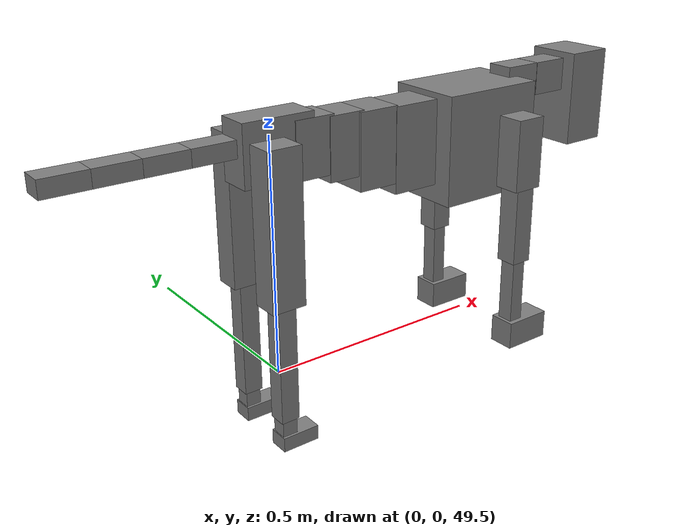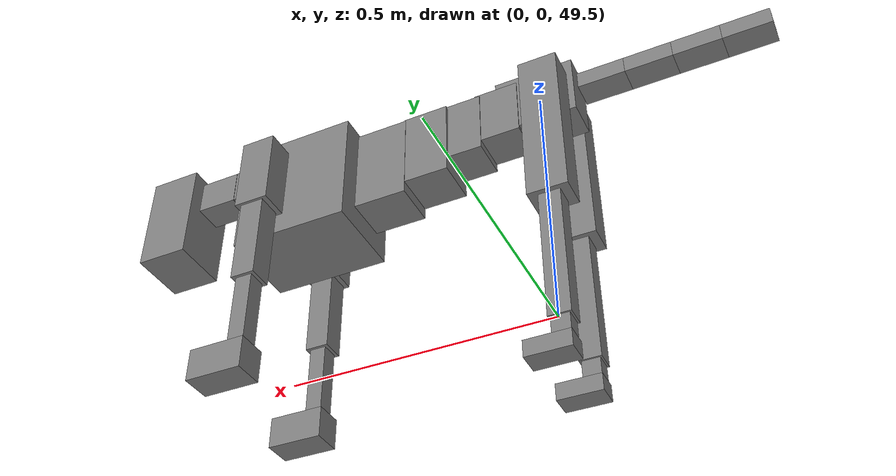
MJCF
<mujoco model="dog">

    <default>
        <joint armature="0.02" stiffness="1" damping="0.2" limited="true"/>
        <geom condim="3" friction="1 0.05 0.05" margin="0.01"/>
        <motor ctrllimited="true" ctrlrange="-1.0 1.0" forcelimited="true" gear="50"/>
    </default>

    <compiler inertiafromgeom="true" angle="radian"/>

    <option timestep="0.016" iterations="50" tolerance="1e-10" solver="Newton" jacobian="dense" cone="pyramidal"/>

    <size nconmax="20000" njmax="60000" nstack="5000000"/>
    <visual>
        <map force="0.1" zfar="30"/>
        <rgba haze="0.15 0.25 0.35 1"/>
        <quality shadowsize="2048"/>
        <global offwidth="800" offheight="800"/>
    </visual>

    <asset>
        <texture type="skybox" builtin="gradient" rgb1="0.3 0.5 0.7" rgb2="0 0 0" width="512" height="512"/>
        <texture name="texplane" type="2d" builtin="checker" rgb1=".2 .3 .4" rgb2=".1 0.15 0.2" width="512" height="512"
                 mark="cross" markrgb=".8 .8 .8"/>
        <texture name="texgeom" type="cube" builtin="flat" mark="cross" width="127" height="1278" rgb1="0.8 0.6 0.4"
                 rgb2="0.8 0.6 0.4" markrgb="1 1 1" random="0.01"/>

        <material name="matplane" reflectance="0.3" texture="texplane" texrepeat="1 1" texuniform="true"/>
        <material name="matgeom" texture="texgeom" texuniform="true" rgba="0.8 0.6 .4 1"/>
    </asset>

    <worldbody>
        <geom name="floor" pos="0 0 0" size="0 0 .25" type="plane" material="matplane" condim="3"/>

        <light directional="false" diffuse=".2 .2 .2" specular="0 0 0" pos="0 0 5" dir="0 0 -1" castshadow="false"/>
        <light mode="targetbodycom" target="torso" directional="false" diffuse=".8 .8 .8" specular="0.3 0.3 0.3"
               pos="0 0 4.0" dir="0 0 -1"/>

        <body name="root" pos="0 0 50">
            <freejoint name="root_1"/>
            <geom type="box" pos="0 0 -0.02" size="0.0774  0.0358  0.063" density="2030"/>

            <body name="spine1" pos="0.054 0 0">
                <joint name="spine1_y" axis="0 1 0" range="0 0.7" limited="true"/>
                <geom type="box" pos="0.02375 0 -0.03" size="0.04375  0.0375  0.05985" density="2030"/>

                <body name="spine2" pos="0.0612 0 0">
                    <joint name="spine2_y" axis="0 1 0" range="-0.15 0.15" limited="true"/>
                    <geom type="box" pos="0.03555  0  -0.04" size="0.04055  0.039  0.06615" density="2030"/>

                    <body name="spine3" pos="0.0730 0 0">
                        <joint name="spine3_y" axis="0 1 0" range="-0.15 0.15" limited="true"/>
                        <geom type="box" pos="0.03555  0  -0.057" size="0.04555  0.0445  0.081" density="2030"/>

                        <body name="spine4" pos="0.0780 0 0">
                            <joint name="spine4_y" axis="0 1 0" range="-0.15 0.15" limited="true"/>
                            <geom type="box" pos="0.05265  0  -0.07" size="0.05265  0.045  0.09135" density="2030"/>

                            <body name="torso" pos="0.1082 0 0">
                                <joint name="torso_y" axis="0 1 0" range="-0.15 0.15" limited="true"/>
                                <geom type="box" pos="0.11925  0  -0.085" size="0.11925  0.085  0.11745"
                                      density="2030"/>

                                <body name="neck1" pos="0.2160  0   0.0180">
                                    <joint name="neck1_y" axis="0 1 0" range="-1.2  -1" limited="true"/>
                                    <geom type="box" pos="0.0423  0  0" size="0.0423  0.03  0.036" density="2325"/>

                                    <body name="neck2" pos="0.0853  0  0">
                                        <joint name="neck2_y" axis="0 1 0" range="0.1  0" limited="true"/>
                                        <geom type="box" pos="0.0423  0  0" size="0.0423  0.03  0.036" density="2325"/>

                                        <body name="head" pos="0.0853  0  0">
                                            <joint name="head_y" axis="0 1 0" range="-0.3  -0.2" limited="true"/>
                                            <geom type="box" pos="0.0531  0  -0.055" size="0.0531  0.06  0.1044"
                                                  density="4030"/>

                                        </body>
                                    </body>
                                </body>

                                <body name="front_shoulder" pos="0.156  0   -0.0480">
                                    <joint name="front_shoulder_y" axis="0 1 0" range="-1 1.5" limited="true"/>
                                    <geom type="box" pos="0 0.13 -0.0505" size="0.0340  0.0291  0.0772" density="1158"/>
                                    <geom type="box" pos="0 -0.13 -0.0505" size="0.0340  0.0291  0.0772"
                                          density="1158"/>

                                    <body name="front_elbow" pos="0  0  -0.1010">
                                        <joint name="front_elbow_y" axis="0 1 0" range="-2 0" limited="true"/>
                                        <geom type="box" pos="0 0.13 -0.0976" size="0.0235  0.0240  0.0976"
                                              density="1081"/>
                                        <geom type="box" pos="0 -0.13 -0.0976" size="0.0235  0.0240  0.0976"
                                              density="1081"/>

                                        <body name="front_wrist" pos="0  0  -0.1953">
                                            <joint name="front_wrist_y" axis="0 1 0" range="-0.2 0" limited="true"/>
                                            <geom type="box" pos="0 0.13 -0.0778" size="0.0162  0.0180  0.0910"
                                                  density="1664"/>
                                            <geom type="box" pos="0 -0.13 -0.0778" size="0.0162  0.0180  0.0910"
                                                  density="1664"/>

                                            <body name="front_finger_end" pos="0  0  -0.1557">
                                                <joint name="front_finger_y" axis="0 1 0" range="-0.4 1"
                                                       limited="true"/>
                                                <geom type="box" pos="0.0292  0.13  -0.0153"
                                                      size="0.0534  0.0292  0.0303" density="1515"/>
                                                <geom type="box" pos="0.0292  -0.13  -0.0153"
                                                      size="0.0534  0.0292  0.0303" density="1515"/>

                                            </body>

                                        </body>
                                    </body>
                                </body>

                            </body>
                        </body>
                    </body>
                </body>
            </body>

            <body name="back_hip" pos="-0.03 0 -0.018">
                <joint name="back_hip_y" axis="0 1 0" range="-1.5 0.3" limited="true"/>
                <geom type="box" pos="0 0.07 -0.1356" size="0.0369  0.0289  0.1584" density="1154"/>
                <geom type="box" pos="0 -0.07 -0.1356" size="0.0369  0.0289  0.1584" density="1154"/>

                <body name="back_knee" pos="0  0  -0.2712">
                    <joint name="back_knee_y" axis="0 1 0" range="0 2.8" limited="true"/>
                    <geom type="box" pos="0 0.07 -0.1270" size="0.0199  0.0196  0.1425" density="1227"/>
                    <geom type="box" pos="0 -0.07 -0.1270" size="0.0199  0.0196  0.1425" density="1227"/>

                    <body name="back_ankle" pos="0  0  -0.2540">
                        <joint name="back_ankle_y" axis="0 1 0" range="-2.2 0" limited="true"/>
                        <geom type="box" pos="0 0.07 -0.0319" size="0.0163  0.0163  0.0431" density="1284"/>
                        <geom type="box" pos="0 -0.07 -0.0319" size="0.0163  0.0163  0.0431" density="1284"/>

                        <body name="back_toe_end" pos="0  0  -0.0637">
                            <joint name="back_toe_y" axis="0 1 0" range="-0.4 1" limited="true"/>
                            <geom type="box" pos="0.0219  0.07  -0.0004" size="0.0402  0.0219  0.0154" density="1515"/>
                            <geom type="box" pos="0.0219  -0.07  -0.0004" size="0.0402  0.0219  0.0154" density="1515"/>

                        </body>
                    </body>
                </body>
            </body>

            <body name="tail1" pos="-0.074 0 -0.006">
                <joint name="tail1_y" axis="0 1 0" range="-0.2 0.2" limited="true"/>
                <geom type="box" pos="-0.0536  0  0" size="0.045  0.025  0.0175" density="1587"/>

                <body name="tail2" pos="-0.09 0 0">
                    <joint name="tail2_y" axis="0 1 0" range="-0.2 0.2" limited="true"/>
                    <geom type="box" pos="-0.0536  0  0" size="0.045  0.025  0.0175" density="1587"/>

                    <body name="tail3" pos="-0.09 0 0">
                        <joint name="tail3_y" axis="0 1 0" range="-0.2 0.2" limited="true"/>
                        <geom type="box" pos="-0.0536  0  0" size="0.045  0.025  0.0175" density="1587"/>

                        <body name="tail4" pos="-0.09 0 0">
                            <joint name="tail4_y" axis="0 1 0" range="-0.2 0.2" limited="true"/>
                            <geom type="box" pos="-0.0536  0  0" size="0.045  0.025  0.0175" density="1587"/>

                        </body>
                    </body>
                </body>
            </body>
        </body>
    </worldbody>

    <actuator>
        <motor joint="spine1_y" forcerange="-150 150     "/>
        <motor joint="spine2_y" forcerange="-150 150     "/>
        <motor joint="spine3_y" forcerange="-150 150     "/>
        <motor joint="spine4_y" forcerange="-150 150     "/>
        <motor joint="torso_y" forcerange="-150 150     "/>
        <motor joint="neck1_y" forcerange="-100 100       "/>
        <motor joint="neck2_y" forcerange="-100 100       "/>
        <motor joint="head_y" forcerange="-150 150       "/>
        <motor joint="front_shoulder_y" forcerange="-131.17 162.78"/>
        <motor joint="front_elbow_y" forcerange="-169.53 105.22"/>
        <motor joint="front_wrist_y" forcerange="-69.65 74.13"/>
        <motor joint="front_finger_y" forcerange="-21.30 94.19"/>
        <motor joint="back_hip_y" forcerange="-268.19 317.26"/>
        <motor joint="back_knee_y" forcerange="-216.43 269.15"/>
        <motor joint="back_angle_y" forcerange="-102.76 57.85"/>
        <motor joint="back_toe_y" forcerange="-37.90 57.55"/>
        <motor joint="tail1_y" forcerange="-50 50     "/>
        <motor joint="tail2_y" forcerange="-50 50     "/>
        <motor joint="tail3_y" forcerange="-50 50     "/>
        <motor joint="tail4_y" forcerange="-50 50     "/>
    </actuator>
</mujoco>
